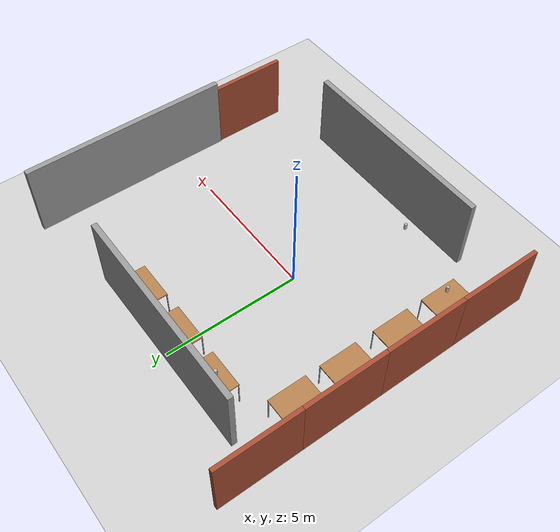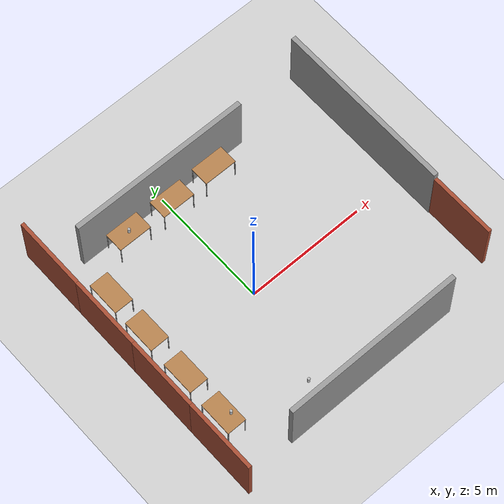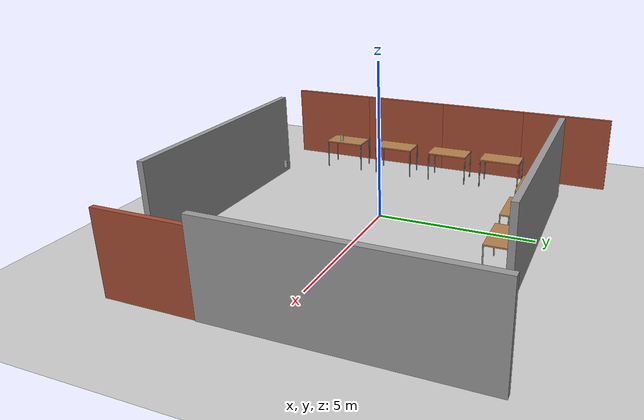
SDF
<sdf version="1.6">
 <world name="default">
  <light name="sun" type="directional">
   <pose>0 0 10 0 -0 0</pose>
   <diffuse>0.8 0.8 0.8 1</diffuse>
   <specular>0.1 0.1 0.1 1</specular>
   <attenuation>
    <range>1000</range>
    <constant>0.9</constant>
    <linear>0.01</linear>
    <quadratic>0.001</quadratic>
   </attenuation>
   <direction>-0.5 0.5 -1</direction>
  </light>
  <model name="ground_plane">
   <static>1</static>
   <link name="link">
    <collision name="collision">
     <geometry><plane><normal>0 0 1</normal><size>100 100</size></plane></geometry>
     <surface><friction><ode><mu>100</mu><mu2>50</mu2></ode></friction></surface>
    </collision>
    <visual name="visual">
     <cast_shadows>0</cast_shadows>
     <geometry><plane><normal>0 0 1</normal><size>100 100</size></plane></geometry>
     <material>
      <script><uri>file://media/materials/scripts/gazebo.material</uri><name>Gazebo/Grey</name></script>
     </material>
    </visual>
   </link>
  </model>
  <gravity>0 0 -9.8</gravity>
  <magnetic_field>6e-06 2.3e-05 -4.2e-05</magnetic_field>
  <atmosphere type="adiabatic"/>
  <physics name="default_physics" default="0" type="ode">
   <max_step_size>0.001</max_step_size>
   <real_time_factor>1</real_time_factor>
   <real_time_update_rate>1000</real_time_update_rate>
  </physics>
  <scene><ambient>0.4 0.4 0.4 1</ambient><background>0.7 0.7 0.7 1</background><shadows>1</shadows></scene>
  <spherical_coordinates>
   <surface_model>EARTH_WGS84</surface_model>
   <latitude_deg>0</latitude_deg>
   <longitude_deg>0</longitude_deg>
   <elevation>0</elevation>
   <heading_deg>0</heading_deg>
  </spherical_coordinates>
  <model name="grey_wall">
   <static>1</static>
   <link name="link">
    <pose>0 0 1.4 0 -0 0</pose>
    <collision name="collision"><geometry><box><size>7.5 0.2 2.8</size></box></geometry></collision>
    <visual name="visual">
     <cast_shadows>0</cast_shadows>
     <geometry><box><size>7.5 0.2 2.8</size></box></geometry>
     <material>
      <script>
       <uri>model://grey_wall/materials/scripts</uri>
       <uri>model://grey_wall/materials/textures</uri>
       <name>vrc/grey_wall</name>
      </script>
     </material>
    </visual>
   </link>
   <pose>0 5 0 0 -0 0</pose>
  </model>
  <model name="grey_wall_clone">
   <static>1</static>
   <link name="link">
    <pose>0 0 1.4 0 -0 0</pose>
    <collision name="collision"><geometry><box><size>7.5 0.2 2.8</size></box></geometry></collision>
    <visual name="visual">
     <cast_shadows>0</cast_shadows>
     <geometry><box><size>7.5 0.2 2.8</size></box></geometry>
     <material>
      <script>
       <uri>model://grey_wall/materials/scripts</uri>
       <uri>model://grey_wall/materials/textures</uri>
       <name>vrc/grey_wall</name>
      </script>
     </material>
    </visual>
   </link>
   <pose>1 -5 0 0 -0 0</pose>
  </model>
  <model name="table">
   <static>0</static>
   <link name="link">
    <collision name="surface">
     <pose>0 0 1 0 -0 0</pose>
     <geometry><box><size>1.5 0.8 0.03</size></box></geometry>
     <surface><friction><ode><mu>0.6</mu><mu2>0.6</mu2></ode></friction></surface>
    </collision>
    <visual name="visual1">
     <pose>0 0 1 0 -0 0</pose>
     <geometry><box><size>1.4 0.8 0.04</size></box></geometry>
     <material>
      <script><uri>file://media/materials/scripts/gazebo.material</uri><name>Gazebo/Wood</name></script>
     </material>
    </visual>
    <collision name="front_left_leg">
     <pose>0.68 0.38 0.5 0 -0 0</pose>
     <geometry><cylinder><radius>0.02</radius><length>1</length></cylinder></geometry>
    </collision>
    <visual name="front_left_leg">
     <pose>0.68 0.38 0.5 0 -0 0</pose>
     <geometry><cylinder><radius>0.02</radius><length>1</length></cylinder></geometry>
     <material>
      <script><uri>file://media/materials/scripts/gazebo.material</uri><name>Gazebo/Grey</name></script>
     </material>
    </visual>
    <collision name="front_right_leg">
     <pose>0.68 -0.38 0.5 0 -0 0</pose>
     <geometry><cylinder><radius>0.02</radius><length>1</length></cylinder></geometry>
    </collision>
    <visual name="front_right_leg">
     <pose>0.68 -0.38 0.5 0 -0 0</pose>
     <geometry><cylinder><radius>0.02</radius><length>1</length></cylinder></geometry>
     <material>
      <script><uri>file://media/materials/scripts/gazebo.material</uri><name>Gazebo/Grey</name></script>
     </material>
    </visual>
    <collision name="back_right_leg">
     <pose>-0.68 -0.38 0.5 0 -0 0</pose>
     <geometry><cylinder><radius>0.02</radius><length>1</length></cylinder></geometry>
    </collision>
    <visual name="back_right_leg">
     <pose>-0.68 -0.38 0.5 0 -0 0</pose>
     <geometry><cylinder><radius>0.02</radius><length>1</length></cylinder></geometry>
     <material>
      <script><uri>file://media/materials/scripts/gazebo.material</uri><name>Gazebo/Grey</name></script>
     </material>
    </visual>
    <collision name="back_left_leg">
     <pose>-0.68 0.38 0.5 0 -0 0</pose>
     <geometry><cylinder><radius>0.02</radius><length>1</length></cylinder></geometry>
    </collision>
    <visual name="back_left_leg">
     <pose>-0.68 0.38 0.5 0 -0 0</pose>
     <geometry><cylinder><radius>0.02</radius><length>1</length></cylinder></geometry>
     <material>
      <script><uri>file://media/materials/scripts/gazebo.material</uri><name>Gazebo/Grey</name></script>
     </material>
    </visual>
    <inertial>
     <inertia><ixx>1</ixx><ixy>0</ixy><ixz>0</ixz><iyy>1</iyy><iyz>0</iyz><izz>1</izz></inertia>
     <mass>1</mass>
    </inertial>
   </link>
   <pose>-4.01172 -2.98994 -0.019523 0.001578 -0.001799 1.57</pose>
  </model>
  <model name="table_clone">
   <static>0</static>
   <link name="link">
    <collision name="surface">
     <pose>0 0 1 0 -0 0</pose>
     <geometry><box><size>1.5 0.8 0.03</size></box></geometry>
     <surface><friction><ode><mu>0.6</mu><mu2>0.6</mu2></ode></friction></surface>
    </collision>
    <visual name="visual1">
     <pose>0 0 1 0 -0 0</pose>
     <geometry><box><size>1.4 0.8 0.04</size></box></geometry>
     <material>
      <script><uri>file://media/materials/scripts/gazebo.material</uri><name>Gazebo/Wood</name></script>
     </material>
    </visual>
    <collision name="front_left_leg">
     <pose>0.68 0.38 0.5 0 -0 0</pose>
     <geometry><cylinder><radius>0.02</radius><length>1</length></cylinder></geometry>
    </collision>
    <visual name="front_left_leg">
     <pose>0.68 0.38 0.5 0 -0 0</pose>
     <geometry><cylinder><radius>0.02</radius><length>1</length></cylinder></geometry>
     <material>
      <script><uri>file://media/materials/scripts/gazebo.material</uri><name>Gazebo/Grey</name></script>
     </material>
    </visual>
    <collision name="front_right_leg">
     <pose>0.68 -0.38 0.5 0 -0 0</pose>
     <geometry><cylinder><radius>0.02</radius><length>1</length></cylinder></geometry>
    </collision>
    <visual name="front_right_leg">
     <pose>0.68 -0.38 0.5 0 -0 0</pose>
     <geometry><cylinder><radius>0.02</radius><length>1</length></cylinder></geometry>
     <material>
      <script><uri>file://media/materials/scripts/gazebo.material</uri><name>Gazebo/Grey</name></script>
     </material>
    </visual>
    <collision name="back_right_leg">
     <pose>-0.68 -0.38 0.5 0 -0 0</pose>
     <geometry><cylinder><radius>0.02</radius><length>1</length></cylinder></geometry>
    </collision>
    <visual name="back_right_leg">
     <pose>-0.68 -0.38 0.5 0 -0 0</pose>
     <geometry><cylinder><radius>0.02</radius><length>1</length></cylinder></geometry>
     <material>
      <script><uri>file://media/materials/scripts/gazebo.material</uri><name>Gazebo/Grey</name></script>
     </material>
    </visual>
    <collision name="back_left_leg">
     <pose>-0.68 0.38 0.5 0 -0 0</pose>
     <geometry><cylinder><radius>0.02</radius><length>1</length></cylinder></geometry>
    </collision>
    <visual name="back_left_leg">
     <pose>-0.68 0.38 0.5 0 -0 0</pose>
     <geometry><cylinder><radius>0.02</radius><length>1</length></cylinder></geometry>
     <material>
      <script><uri>file://media/materials/scripts/gazebo.material</uri><name>Gazebo/Grey</name></script>
     </material>
    </visual>
    <inertial>
     <inertia><ixx>1</ixx><ixy>0</ixy><ixz>0</ixz><iyy>1</iyy><iyz>0</iyz><izz>1</izz></inertia>
     <mass>1</mass>
    </inertial>
   </link>
   <pose>-4.00009 -1.00037 -0.005769 3.3e-05 3.6e-05 1.57106</pose>
  </model>
  <model name="table_clone_clone">
   <static>0</static>
   <link name="link">
    <collision name="surface">
     <pose>0 0 1 0 -0 0</pose>
     <geometry><box><size>1.5 0.8 0.03</size></box></geometry>
     <surface><friction><ode><mu>0.6</mu><mu2>0.6</mu2></ode></friction></surface>
    </collision>
    <visual name="visual1">
     <pose>0 0 1 0 -0 0</pose>
     <geometry><box><size>1.4 0.8 0.04</size></box></geometry>
     <material>
      <script><uri>file://media/materials/scripts/gazebo.material</uri><name>Gazebo/Wood</name></script>
     </material>
    </visual>
    <collision name="front_left_leg">
     <pose>0.68 0.38 0.5 0 -0 0</pose>
     <geometry><cylinder><radius>0.02</radius><length>1</length></cylinder></geometry>
    </collision>
    <visual name="front_left_leg">
     <pose>0.68 0.38 0.5 0 -0 0</pose>
     <geometry><cylinder><radius>0.02</radius><length>1</length></cylinder></geometry>
     <material>
      <script><uri>file://media/materials/scripts/gazebo.material</uri><name>Gazebo/Grey</name></script>
     </material>
    </visual>
    <collision name="front_right_leg">
     <pose>0.68 -0.38 0.5 0 -0 0</pose>
     <geometry><cylinder><radius>0.02</radius><length>1</length></cylinder></geometry>
    </collision>
    <visual name="front_right_leg">
     <pose>0.68 -0.38 0.5 0 -0 0</pose>
     <geometry><cylinder><radius>0.02</radius><length>1</length></cylinder></geometry>
     <material>
      <script><uri>file://media/materials/scripts/gazebo.material</uri><name>Gazebo/Grey</name></script>
     </material>
    </visual>
    <collision name="back_right_leg">
     <pose>-0.68 -0.38 0.5 0 -0 0</pose>
     <geometry><cylinder><radius>0.02</radius><length>1</length></cylinder></geometry>
    </collision>
    <visual name="back_right_leg">
     <pose>-0.68 -0.38 0.5 0 -0 0</pose>
     <geometry><cylinder><radius>0.02</radius><length>1</length></cylinder></geometry>
     <material>
      <script><uri>file://media/materials/scripts/gazebo.material</uri><name>Gazebo/Grey</name></script>
     </material>
    </visual>
    <collision name="back_left_leg">
     <pose>-0.68 0.38 0.5 0 -0 0</pose>
     <geometry><cylinder><radius>0.02</radius><length>1</length></cylinder></geometry>
    </collision>
    <visual name="back_left_leg">
     <pose>-0.68 0.38 0.5 0 -0 0</pose>
     <geometry><cylinder><radius>0.02</radius><length>1</length></cylinder></geometry>
     <material>
      <script><uri>file://media/materials/scripts/gazebo.material</uri><name>Gazebo/Grey</name></script>
     </material>
    </visual>
    <inertial>
     <inertia><ixx>1</ixx><ixy>0</ixy><ixz>0</ixz><iyy>1</iyy><iyz>0</iyz><izz>1</izz></inertia>
     <mass>1</mass>
    </inertial>
   </link>
   <pose>-3.99485 1.07965 -1e-05 0 -0 1.5735</pose>
  </model>
  <model name="table_clone_clone_clone">
   <static>0</static>
   <link name="link">
    <collision name="surface">
     <pose>0 0 1 0 -0 0</pose>
     <geometry><box><size>1.5 0.8 0.03</size></box></geometry>
     <surface><friction><ode><mu>0.6</mu><mu2>0.6</mu2></ode></friction></surface>
    </collision>
    <visual name="visual1">
     <pose>0 0 1 0 -0 0</pose>
     <geometry><box><size>1.4 0.8 0.04</size></box></geometry>
     <material>
      <script><uri>file://media/materials/scripts/gazebo.material</uri><name>Gazebo/Wood</name></script>
     </material>
    </visual>
    <collision name="front_left_leg">
     <pose>0.68 0.38 0.5 0 -0 0</pose>
     <geometry><cylinder><radius>0.02</radius><length>1</length></cylinder></geometry>
    </collision>
    <visual name="front_left_leg">
     <pose>0.68 0.38 0.5 0 -0 0</pose>
     <geometry><cylinder><radius>0.02</radius><length>1</length></cylinder></geometry>
     <material>
      <script><uri>file://media/materials/scripts/gazebo.material</uri><name>Gazebo/Grey</name></script>
     </material>
    </visual>
    <collision name="front_right_leg">
     <pose>0.68 -0.38 0.5 0 -0 0</pose>
     <geometry><cylinder><radius>0.02</radius><length>1</length></cylinder></geometry>
    </collision>
    <visual name="front_right_leg">
     <pose>0.68 -0.38 0.5 0 -0 0</pose>
     <geometry><cylinder><radius>0.02</radius><length>1</length></cylinder></geometry>
     <material>
      <script><uri>file://media/materials/scripts/gazebo.material</uri><name>Gazebo/Grey</name></script>
     </material>
    </visual>
    <collision name="back_right_leg">
     <pose>-0.68 -0.38 0.5 0 -0 0</pose>
     <geometry><cylinder><radius>0.02</radius><length>1</length></cylinder></geometry>
    </collision>
    <visual name="back_right_leg">
     <pose>-0.68 -0.38 0.5 0 -0 0</pose>
     <geometry><cylinder><radius>0.02</radius><length>1</length></cylinder></geometry>
     <material>
      <script><uri>file://media/materials/scripts/gazebo.material</uri><name>Gazebo/Grey</name></script>
     </material>
    </visual>
    <collision name="back_left_leg">
     <pose>-0.68 0.38 0.5 0 -0 0</pose>
     <geometry><cylinder><radius>0.02</radius><length>1</length></cylinder></geometry>
    </collision>
    <visual name="back_left_leg">
     <pose>-0.68 0.38 0.5 0 -0 0</pose>
     <geometry><cylinder><radius>0.02</radius><length>1</length></cylinder></geometry>
     <material>
      <script><uri>file://media/materials/scripts/gazebo.material</uri><name>Gazebo/Grey</name></script>
     </material>
    </visual>
    <inertial>
     <inertia><ixx>1</ixx><ixy>0</ixy><ixz>0</ixz><iyy>1</iyy><iyz>0</iyz><izz>1</izz></inertia>
     <mass>1</mass>
    </inertial>
   </link>
   <pose>-4 3 -2e-06 0 -0 1.5708</pose>
  </model>
  <model name="beer">
   <link name="link">
    <pose>0 0 0.115 0 -0 0</pose>
    <inertial>
     <mass>0.39</mass>
     <inertia><ixx>0.00058</ixx><ixy>0</ixy><ixz>0</ixz><iyy>0.00058</iyy><iyz>0</iyz><izz>0.00019</izz></inertia>
    </inertial>
    <collision name="collision">
     <geometry><cylinder><radius>0.055</radius><length>0.23</length></cylinder></geometry>
    </collision>
    <visual name="visual">
     <geometry><cylinder><radius>0.055</radius><length>0.23</length></cylinder></geometry>
     <material>
      <script>
       <uri>model://beer/materials/scripts</uri>
       <uri>model://beer/materials/textures</uri>
       <name>Beer/Diffuse</name>
      </script>
     </material>
    </visual>
   </link>
   <pose>-3.83964 -3.18649 0.994852 0.002128 0.001596 0.067265</pose>
  </model>
  <model name="table_clone_0">
   <static>0</static>
   <link name="link">
    <collision name="surface">
     <pose>0 0 1 0 -0 0</pose>
     <geometry><box><size>1.5 0.8 0.03</size></box></geometry>
     <surface><friction><ode><mu>0.6</mu><mu2>0.6</mu2></ode></friction></surface>
    </collision>
    <visual name="visual1">
     <pose>0 0 1 0 -0 0</pose>
     <geometry><box><size>1.4 0.8 0.04</size></box></geometry>
     <material>
      <script><uri>file://media/materials/scripts/gazebo.material</uri><name>Gazebo/Wood</name></script>
     </material>
    </visual>
    <collision name="front_left_leg">
     <pose>0.68 0.38 0.5 0 -0 0</pose>
     <geometry><cylinder><radius>0.02</radius><length>1</length></cylinder></geometry>
    </collision>
    <visual name="front_left_leg">
     <pose>0.68 0.38 0.5 0 -0 0</pose>
     <geometry><cylinder><radius>0.02</radius><length>1</length></cylinder></geometry>
     <material>
      <script><uri>file://media/materials/scripts/gazebo.material</uri><name>Gazebo/Grey</name></script>
     </material>
    </visual>
    <collision name="front_right_leg">
     <pose>0.68 -0.38 0.5 0 -0 0</pose>
     <geometry><cylinder><radius>0.02</radius><length>1</length></cylinder></geometry>
    </collision>
    <visual name="front_right_leg">
     <pose>0.68 -0.38 0.5 0 -0 0</pose>
     <geometry><cylinder><radius>0.02</radius><length>1</length></cylinder></geometry>
     <material>
      <script><uri>file://media/materials/scripts/gazebo.material</uri><name>Gazebo/Grey</name></script>
     </material>
    </visual>
    <collision name="back_right_leg">
     <pose>-0.68 -0.38 0.5 0 -0 0</pose>
     <geometry><cylinder><radius>0.02</radius><length>1</length></cylinder></geometry>
    </collision>
    <visual name="back_right_leg">
     <pose>-0.68 -0.38 0.5 0 -0 0</pose>
     <geometry><cylinder><radius>0.02</radius><length>1</length></cylinder></geometry>
     <material>
      <script><uri>file://media/materials/scripts/gazebo.material</uri><name>Gazebo/Grey</name></script>
     </material>
    </visual>
    <collision name="back_left_leg">
     <pose>-0.68 0.38 0.5 0 -0 0</pose>
     <geometry><cylinder><radius>0.02</radius><length>1</length></cylinder></geometry>
    </collision>
    <visual name="back_left_leg">
     <pose>-0.68 0.38 0.5 0 -0 0</pose>
     <geometry><cylinder><radius>0.02</radius><length>1</length></cylinder></geometry>
     <material>
      <script><uri>file://media/materials/scripts/gazebo.material</uri><name>Gazebo/Grey</name></script>
     </material>
    </visual>
    <inertial>
     <inertia><ixx>1</ixx><ixy>0</ixy><ixz>0</ixz><iyy>1</iyy><iyz>0</iyz><izz>1</izz></inertia>
     <mass>1</mass>
    </inertial>
   </link>
   <pose>-1.99842 4.45068 -0.019124 0.000355 -1.3e-05 0.000187</pose>
  </model>
  <model name="table_clone_0_clone">
   <static>0</static>
   <link name="link">
    <collision name="surface">
     <pose>0 0 1 0 -0 0</pose>
     <geometry><box><size>1.5 0.8 0.03</size></box></geometry>
     <surface><friction><ode><mu>0.6</mu><mu2>0.6</mu2></ode></friction></surface>
    </collision>
    <visual name="visual1">
     <pose>0 0 1 0 -0 0</pose>
     <geometry><box><size>1.4 0.8 0.04</size></box></geometry>
     <material>
      <script><uri>file://media/materials/scripts/gazebo.material</uri><name>Gazebo/Wood</name></script>
     </material>
    </visual>
    <collision name="front_left_leg">
     <pose>0.68 0.38 0.5 0 -0 0</pose>
     <geometry><cylinder><radius>0.02</radius><length>1</length></cylinder></geometry>
    </collision>
    <visual name="front_left_leg">
     <pose>0.68 0.38 0.5 0 -0 0</pose>
     <geometry><cylinder><radius>0.02</radius><length>1</length></cylinder></geometry>
     <material>
      <script><uri>file://media/materials/scripts/gazebo.material</uri><name>Gazebo/Grey</name></script>
     </material>
    </visual>
    <collision name="front_right_leg">
     <pose>0.68 -0.38 0.5 0 -0 0</pose>
     <geometry><cylinder><radius>0.02</radius><length>1</length></cylinder></geometry>
    </collision>
    <visual name="front_right_leg">
     <pose>0.68 -0.38 0.5 0 -0 0</pose>
     <geometry><cylinder><radius>0.02</radius><length>1</length></cylinder></geometry>
     <material>
      <script><uri>file://media/materials/scripts/gazebo.material</uri><name>Gazebo/Grey</name></script>
     </material>
    </visual>
    <collision name="back_right_leg">
     <pose>-0.68 -0.38 0.5 0 -0 0</pose>
     <geometry><cylinder><radius>0.02</radius><length>1</length></cylinder></geometry>
    </collision>
    <visual name="back_right_leg">
     <pose>-0.68 -0.38 0.5 0 -0 0</pose>
     <geometry><cylinder><radius>0.02</radius><length>1</length></cylinder></geometry>
     <material>
      <script><uri>file://media/materials/scripts/gazebo.material</uri><name>Gazebo/Grey</name></script>
     </material>
    </visual>
    <collision name="back_left_leg">
     <pose>-0.68 0.38 0.5 0 -0 0</pose>
     <geometry><cylinder><radius>0.02</radius><length>1</length></cylinder></geometry>
    </collision>
    <visual name="back_left_leg">
     <pose>-0.68 0.38 0.5 0 -0 0</pose>
     <geometry><cylinder><radius>0.02</radius><length>1</length></cylinder></geometry>
     <material>
      <script><uri>file://media/materials/scripts/gazebo.material</uri><name>Gazebo/Grey</name></script>
     </material>
    </visual>
    <inertial>
     <inertia><ixx>1</ixx><ixy>0</ixy><ixz>0</ixz><iyy>1</iyy><iyz>0</iyz><izz>1</izz></inertia>
     <mass>1</mass>
    </inertial>
   </link>
   <pose>1.7e-05 4.41536 -0.002567 -3.1e-05 -4e-05 -1e-05</pose>
  </model>
  <model name="table_clone_0_clone_0">
   <static>0</static>
   <link name="link">
    <collision name="surface">
     <pose>0 0 1 0 -0 0</pose>
     <geometry><box><size>1.5 0.8 0.03</size></box></geometry>
     <surface><friction><ode><mu>0.6</mu><mu2>0.6</mu2></ode></friction></surface>
    </collision>
    <visual name="visual1">
     <pose>0 0 1 0 -0 0</pose>
     <geometry><box><size>1.4 0.8 0.04</size></box></geometry>
     <material>
      <script><uri>file://media/materials/scripts/gazebo.material</uri><name>Gazebo/Wood</name></script>
     </material>
    </visual>
    <collision name="front_left_leg">
     <pose>0.68 0.38 0.5 0 -0 0</pose>
     <geometry><cylinder><radius>0.02</radius><length>1</length></cylinder></geometry>
    </collision>
    <visual name="front_left_leg">
     <pose>0.68 0.38 0.5 0 -0 0</pose>
     <geometry><cylinder><radius>0.02</radius><length>1</length></cylinder></geometry>
     <material>
      <script><uri>file://media/materials/scripts/gazebo.material</uri><name>Gazebo/Grey</name></script>
     </material>
    </visual>
    <collision name="front_right_leg">
     <pose>0.68 -0.38 0.5 0 -0 0</pose>
     <geometry><cylinder><radius>0.02</radius><length>1</length></cylinder></geometry>
    </collision>
    <visual name="front_right_leg">
     <pose>0.68 -0.38 0.5 0 -0 0</pose>
     <geometry><cylinder><radius>0.02</radius><length>1</length></cylinder></geometry>
     <material>
      <script><uri>file://media/materials/scripts/gazebo.material</uri><name>Gazebo/Grey</name></script>
     </material>
    </visual>
    <collision name="back_right_leg">
     <pose>-0.68 -0.38 0.5 0 -0 0</pose>
     <geometry><cylinder><radius>0.02</radius><length>1</length></cylinder></geometry>
    </collision>
    <visual name="back_right_leg">
     <pose>-0.68 -0.38 0.5 0 -0 0</pose>
     <geometry><cylinder><radius>0.02</radius><length>1</length></cylinder></geometry>
     <material>
      <script><uri>file://media/materials/scripts/gazebo.material</uri><name>Gazebo/Grey</name></script>
     </material>
    </visual>
    <collision name="back_left_leg">
     <pose>-0.68 0.38 0.5 0 -0 0</pose>
     <geometry><cylinder><radius>0.02</radius><length>1</length></cylinder></geometry>
    </collision>
    <visual name="back_left_leg">
     <pose>-0.68 0.38 0.5 0 -0 0</pose>
     <geometry><cylinder><radius>0.02</radius><length>1</length></cylinder></geometry>
     <material>
      <script><uri>file://media/materials/scripts/gazebo.material</uri><name>Gazebo/Grey</name></script>
     </material>
    </visual>
    <inertial>
     <inertia><ixx>1</ixx><ixy>0</ixy><ixz>0</ixz><iyy>1</iyy><iyz>0</iyz><izz>1</izz></inertia>
     <mass>1</mass>
    </inertial>
   </link>
   <pose>2.00008 4.44121 -1.6e-05 -3e-06 -0 -6.4e-05</pose>
  </model>
  <model name="beer_0">
   <link name="link">
    <pose>0 0 0.115 0 -0 0</pose>
    <inertial>
     <mass>0.39</mass>
     <inertia><ixx>0.00058</ixx><ixy>0</ixy><ixz>0</ixz><iyy>0.00058</iyy><iyz>0</iyz><izz>0.00019</izz></inertia>
    </inertial>
    <collision name="collision">
     <geometry><cylinder><radius>0.055</radius><length>0.23</length></cylinder></geometry>
    </collision>
    <visual name="visual">
     <geometry><cylinder><radius>0.055</radius><length>0.23</length></cylinder></geometry>
     <material>
      <script>
       <uri>model://beer/materials/scripts</uri>
       <uri>model://beer/materials/textures</uri>
       <name>Beer/Diffuse</name>
      </script>
     </material>
    </visual>
   </link>
   <pose>-1.99909 4.41099 0.995858 0.000589 6.1e-05 -0.11052</pose>
  </model>
  <model name="beer_1">
   <link name="link">
    <pose>0 0 0.115 0 -0 0</pose>
    <inertial>
     <mass>0.39</mass>
     <inertia><ixx>0.00058</ixx><ixy>0</ixy><ixz>0</ixz><iyy>0.00058</iyy><iyz>0</iyz><izz>0.00019</izz></inertia>
    </inertial>
    <collision name="collision">
     <geometry><cylinder><radius>0.055</radius><length>0.23</length></cylinder></geometry>
    </collision>
    <visual name="visual">
     <geometry><cylinder><radius>0.055</radius><length>0.23</length></cylinder></geometry>
     <material>
      <script>
       <uri>model://beer/materials/scripts</uri>
       <uri>model://beer/materials/textures</uri>
       <name>Beer/Diffuse</name>
      </script>
     </material>
    </visual>
   </link>
   <pose>-1.00001 -4 0.77499 -1e-06 2.6e-05 0.002446</pose>
  </model>
  <model name="Brick_Wall">
   <pose>-5 -4 0 0 -0 0</pose>
   <link name="Wall_2">
    <collision name="Wall_2_Collision">
     <geometry><box><size>3 0.15 2.5</size></box></geometry>
     <pose>0 0 1.25 0 -0 0</pose>
    </collision>
    <visual name="Wall_2_Visual">
     <pose>0 0 1.25 0 -0 0</pose>
     <geometry><box><size>3 0.15 2.5</size></box></geometry>
     <material>
      <script><uri>file://media/materials/scripts/gazebo.material</uri><name>Gazebo/Bricks</name></script>
      <ambient>1 1 1 1</ambient>
     </material>
    </visual>
    <pose>0 0 0 0 -0 1.5708</pose>
   </link>
   <static>1</static>
  </model>
  <model name="Brick_Wall_0">
   <pose>-5 -1 0 0 -0 0</pose>
   <link name="Wall_2">
    <collision name="Wall_2_Collision">
     <geometry><box><size>3 0.15 2.5</size></box></geometry>
     <pose>0 0 1.25 0 -0 0</pose>
    </collision>
    <visual name="Wall_2_Visual">
     <pose>0 0 1.25 0 -0 0</pose>
     <geometry><box><size>3 0.15 2.5</size></box></geometry>
     <material>
      <script><uri>file://media/materials/scripts/gazebo.material</uri><name>Gazebo/Bricks</name></script>
      <ambient>1 1 1 1</ambient>
     </material>
    </visual>
    <pose>0 0 0 0 -0 1.5708</pose>
   </link>
   <static>1</static>
  </model>
  <model name="Brick_Wall_1">
   <pose>-5 2 0 0 -0 0</pose>
   <link name="Wall_2">
    <collision name="Wall_2_Collision">
     <geometry><box><size>3 0.15 2.5</size></box></geometry>
     <pose>0 0 1.25 0 -0 0</pose>
    </collision>
    <visual name="Wall_2_Visual">
     <pose>0 0 1.25 0 -0 0</pose>
     <geometry><box><size>3 0.15 2.5</size></box></geometry>
     <material>
      <script><uri>file://media/materials/scripts/gazebo.material</uri><name>Gazebo/Bricks</name></script>
      <ambient>1 1 1 1</ambient>
     </material>
    </visual>
    <pose>0 0 0 0 -0 1.5708</pose>
   </link>
   <static>1</static>
  </model>
  <model name="Brick_Wall_2">
   <pose>-5 5 0 0 -0 0</pose>
   <link name="Wall_2">
    <collision name="Wall_2_Collision">
     <geometry><box><size>3 0.15 2.5</size></box></geometry>
     <pose>0 0 1.25 0 -0 0</pose>
    </collision>
    <visual name="Wall_2_Visual">
     <pose>0 0 1.25 0 -0 0</pose>
     <geometry><box><size>3 0.15 2.5</size></box></geometry>
     <material>
      <script><uri>file://media/materials/scripts/gazebo.material</uri><name>Gazebo/Bricks</name></script>
      <ambient>1 1 1 1</ambient>
     </material>
    </visual>
    <pose>0 0 0 0 -0 1.5708</pose>
   </link>
   <static>1</static>
  </model>
  <model name="grey_wall_clone_0">
   <static>1</static>
   <link name="link">
    <pose>0 0 1.4 0 -0 0</pose>
    <collision name="collision"><geometry><box><size>7.5 0.2 2.8</size></box></geometry></collision>
    <visual name="visual">
     <cast_shadows>0</cast_shadows>
     <geometry><box><size>7.5 0.2 2.8</size></box></geometry>
     <material>
      <script>
       <uri>model://grey_wall/materials/scripts</uri>
       <uri>model://grey_wall/materials/textures</uri>
       <name>vrc/grey_wall</name>
      </script>
     </material>
    </visual>
   </link>
   <pose>7 2 0 0 0 -1.5708</pose>
  </model>
  <model name="Brick_Wall_0_clone">
   <pose>7 -3 0 0 -0 0</pose>
   <link name="Wall_2">
    <collision name="Wall_2_Collision">
     <geometry><box><size>3 0.15 2.5</size></box></geometry>
     <pose>0 0 1.25 0 -0 0</pose>
    </collision>
    <visual name="Wall_2_Visual">
     <pose>0 0 1.25 0 -0 0</pose>
     <geometry><box><size>3 0.15 2.5</size></box></geometry>
     <material>
      <script><uri>file://media/materials/scripts/gazebo.material</uri><name>Gazebo/Bricks</name></script>
      <ambient>1 1 1 1</ambient>
     </material>
    </visual>
    <pose>0 0 0 0 -0 1.5708</pose>
   </link>
   <static>1</static>
  </model>
 </world>
</sdf>
